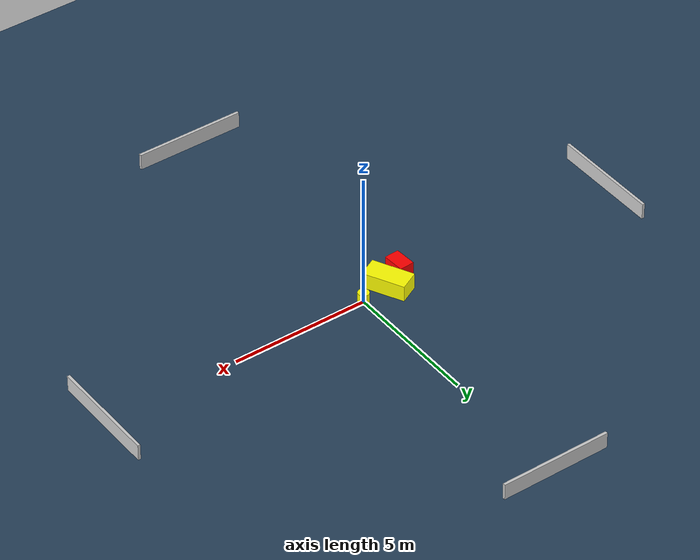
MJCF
<?xml version="1.0" ?>
<mujoco model="generated_environment">
  <option timestep="0.01" integrator="RK4" cone="elliptic"/>
  <default>
    <geom density="1"/>
  </default>
  <asset>
    <texture builtin="gradient" height="3072" name="skybox" rgb1="0.3 0.5 0.7" rgb2="0 0 0" type="skybox" width="512"/>
    <texture builtin="checker" height="300" name="groundplane" rgb1="0.2 0.3 0.4" rgb2="0.1 0.2 0.3" type="2d" width="300"/>
    <material name="groundplane" reflectance="0.2" texrepeat="5 5" texture="groundplane"/>
  </asset>
  <worldbody>
    <light dir="0 0 -1" directional="true" pos="0 0 1.5"/>
    <geom condim="3" friction="0.5 0.005 0.001" material="groundplane" name="floor" pos="0 0 0" size="0 0 0.05" type="plane"/>
    <body name="walls">
      <geom name="wall_1" condim="4" pos="-10.0 0.0 0.3" rgba="0.800000011920929 0.800000011920929 0.800000011920929 1.0" size="0.05 2.0 0.3" type="box"/>
      <geom name="wall_2" condim="4" pos="10.0 0.0 0.3" rgba="0.800000011920929 0.800000011920929 0.800000011920929 1.0" size="0.05 2.0 0.3" type="box"/>
      <geom name="wall_3" condim="4" pos="0.0 -10.0 0.3" rgba="0.800000011920929 0.800000011920929 0.800000011920929 1.0" size="2.0 0.05 0.3" type="box"/>
      <geom name="wall_4" condim="4" pos="0.0 10.0 0.3" rgba="0.800000011920929 0.800000011920929 0.800000011920929 1.0" size="2.0 0.05 0.3" type="box"/>
    </body>
    <body name="robot">
      <joint name="joint_x" type="slide" pos="0 0 0" axis="1 0 0"/>
      <joint name="joint_y" type="slide" pos="0 0 0" axis="0 1 0"/>
      <geom name="robot" type="cylinder" pos="0.0 0.0 0.2" size="0.2 0.2 0.0" mass="5.0" friction="1.0 0.005 0.0001" condim="4" rgba="1.0 1.0 0.0 1.0"/>
    </body>
    <body name="obstacle_1_movable">
      <geom name="obstacle_1_movable" condim="4" pos="-1.0650575350269214 -0.10330985498769243 0.3" euler="0 0 206.9130850039336" friction="0.0 0.005 0.001" rgba="1.0 1.0 0.0 1.0" size="0.38065795169360506 0.7691324647123876 0.3" type="box" mass="0.1"/>
      <joint type="free"/>
    </body>
    <body name="obstacle_2_static">
      <geom name="obstacle_2_static" condim="4" pos="-1.7678451207951515 -0.4532597775113927 0.3" euler="0 0 93.34269641184386" friction="0.0 0.005 0.001" rgba="1.0 0.0 0.0 1.0" size="0.3982046340315324 0.2666269634405328 0.3" type="box"/>
    </body>
  </worldbody>
  <actuator>
    <motor name="actuator_x" joint="joint_x" gear="1" ctrlrange="-1 1"/>
    <motor name="actuator_y" joint="joint_y" gear="1" ctrlrange="-1 1"/>
  </actuator>
</mujoco>
